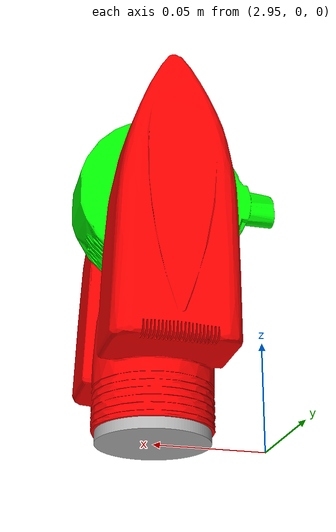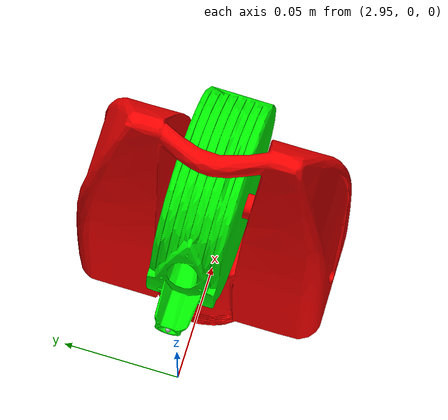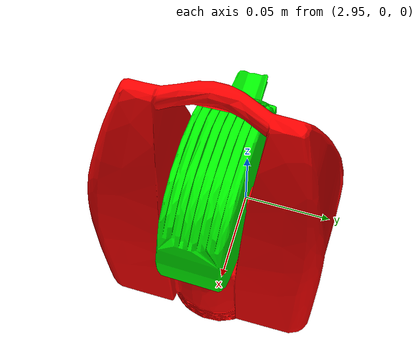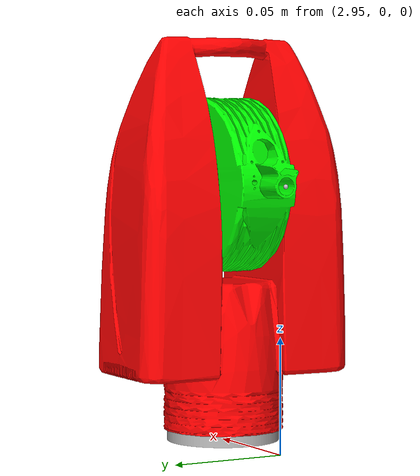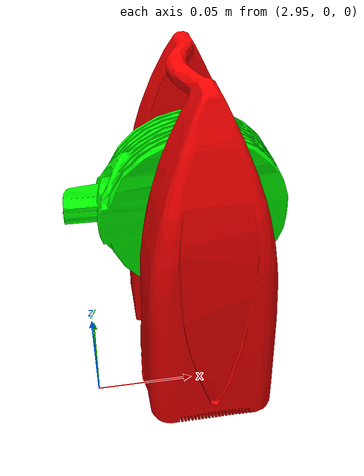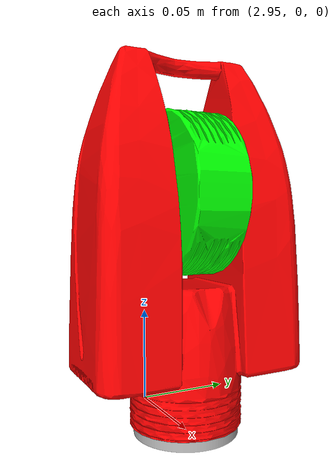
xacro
<?xml version="1.0" ?>
<robot name="lasertracker" xmlns:xacro="http://www.ros.org/wiki/xacro">

  <xacro:include filename="$(find laser_tracker_tools)/urdf/materials.xacro" />
  <xacro:include filename="$(find laser_tracker_tools)/urdf/lasertracker.gazebo" />

  <link name="world"/>

  <joint name="base" type="fixed">
      <origin xyz="3.0 0.0 0.0" rpy="0.0 0.0 -1.5708"/>
      <parent link="world"/>
      <child link="base_link"/>
      <axis xyz="0.0 0.0 0.0"/>
      <limit lower="0.0" upper="0.0" effort="0.0" velocity="0.0"/>
  </joint>

  <link name="base_link">
    <inertial>
      <origin xyz="-3.618764437576268e-18 -7.237528875152536e-18 0.0025" rpy="0 0 0"/>
      <mass value="0.0770671947833746"/>
      <inertia ixx="1.2e-05" iyy="1.2e-05" izz="2.4e-05" ixy="-0.0" iyz="-0.0" ixz="0.0"/>
    </inertial>
    <visual>
      <origin xyz="0 0 0" rpy="0 0 0"/>
      <geometry>
        <mesh filename="file://$(find laser_tracker_tools)/meshes/base_link.stl" scale="0.001 0.001 0.001"/>
      </geometry>
      <material name="silver"/>
    </visual>
    <collision>
      <origin xyz="0 0 0" rpy="0 0 0"/>
      <geometry>
        <mesh filename="file://$(find laser_tracker_tools)/meshes/base_link.stl" scale="0.001 0.001 0.001"/>
      </geometry>
    </collision>
  </link>

  <link name="Link_1">
    <inertial>
      <origin xyz="0.00018869328495569018 -0.00022483382979837345 0.071459595268866" rpy="0 0 0"/>
      <mass value="4.120583142610971"/>
      <inertia ixx="0.007397" iyy="0.010189" izz="0.004435" ixy="-0.0" iyz="8.8e-05" ixz="3e-06"/>
    </inertial>
    <visual>
      <origin xyz="-0.0 -0.0 -0.005" rpy="0 0 0"/>
      <geometry>
        <mesh filename="file://$(find laser_tracker_tools)/meshes/Link_1.stl" scale="0.001 0.001 0.001"/>
      </geometry>
      <material name="red"/>
    </visual>
    <collision>
      <origin xyz="-0.0 -0.0 -0.005" rpy="0 0 0"/>
      <geometry>
        <mesh filename="file://$(find laser_tracker_tools)/meshes/Link_1.stl" scale="0.001 0.001 0.001"/>
      </geometry>
    </collision>
  </link>

  <link name="Link_2">
    <inertial>
      <origin xyz="-0.00021113003510141322 0.0 0.002059592205613331" rpy="0 0 0"/>
      <mass value="0.9276291336344198"/>
      <inertia ixx="0.000701" iyy="0.000381" izz="0.000423" ixy="-5e-06" iyz="-2e-06" ixz="2e-06"/>
    </inertial>
    <visual>
      <origin xyz="-0.000757 0.0 -0.111321" rpy="0 0 0"/>
      <geometry>
        <mesh filename="file://$(find laser_tracker_tools)/meshes/Link_2.stl" scale="0.001 0.001 0.001"/>
      </geometry>
      <material name="green"/>
    </visual>
    <collision>
      <origin xyz="-0.000757 0.0 -0.111321" rpy="0 0 0"/>
      <geometry>
        <mesh filename="file://$(find laser_tracker_tools)/meshes/Link_2.stl" scale="0.001 0.001 0.001"/>
      </geometry>
    </collision>
  </link>

  <link name="optic_frame">
    <inertial>
      <origin xyz="0 0 0" rpy="0 0 0"/>
      <mass value="1e-6"/>
      <inertia ixx="1e-6" iyy="1e-6" izz="1e-6" ixy="0" ixz="0" iyz="0"/>
    </inertial>
    <visual>
      <origin xyz="0 0 0" rpy="0 0 0"/>
      <geometry><sphere radius="0.001"/></geometry>
    </visual>
    <collision>
      <origin xyz="0 0 0" rpy="0 0 0"/>
      <geometry><sphere radius="0.001"/></geometry>
    </collision>
  </link>

  <joint name="Joint_Yaw" type="continuous">
    <origin xyz="0.0 0.0 0.005" rpy="0 0 0"/>
    <parent link="base_link"/>
    <child link="Link_1"/>
    <axis xyz="0.0 0.0 1.0"/>
    <limit upper="4.014257" lower="-4.014257" effort="100" velocity="100"/>
  </joint>

  <joint name="Joint_Pitch" type="revolute">
    <origin xyz="0.0 0.0 0.106321" rpy="0 0 0"/>
    <parent link="Link_1"/>
    <child link="Link_2"/>
    <axis xyz="0.999868 -0.016134 0.001653"/>
    <limit upper="1.047198" lower="-4.014257" effort="100" velocity="100"/>
  </joint>

  <joint name="optic_fixed" type="fixed">
    <origin xyz="-0.001 -0.056 0.0025" rpy="0.0 0.0 0.0"/>
    <parent link="Link_2"/>
    <child link="optic_frame"/>
    <axis xyz="0.0 0.0 0.0"/>
  </joint>

  <ros2_control name="LaserTrackerSystem" type="system">
    <hardware>
      <plugin>gazebo_ros2_control/GazeboSystem</plugin>
    </hardware>

    <joint name="Joint_Yaw">
      <command_interface name="position"/>
      <state_interface name="position"/>
      <state_interface name="velocity"/>
    </joint>

    <joint name="Joint_Pitch">
      <command_interface name="position"/>
      <state_interface name="position"/>
      <state_interface name="velocity"/>
    </joint>
  </ros2_control>

  <gazebo>
    <plugin filename="libgazebo_ros2_control.so" name="gazebo_ros2_control">
      <robot_param_node>/laser_tracker/robot_state_publisher</robot_param_node>
      <ros>
        <namespace>laser_tracker</namespace>
        <node_name>gazebo_ros2_control_tracker</node_name>
        <remapping>/tf:=/laser_tracker/tf</remapping>
        <remapping>/tf_static:=/laser_tracker/tf_static</remapping>
      </ros>
      <parameters>$(find laser_tracker_tools)/config/controller_manager.yaml</parameters>
    </plugin>

  <plugin name="laser_tracker_sim" filename="liblaser_tracker_tools.so">
    <max_range>60.0</max_range>
    <h_fov>0.17453</h_fov>
    <v_fov>0.17453</v_fov>
    <sigma_range>5.0e-6</sigma_range>
    <sigma_angle>4.85e-6</sigma_angle>
    <lock_ang_thresh>0.005</lock_ang_thresh>
    <occlusion>true</occlusion>
    <search_speed>0.3</search_speed>
    <beam_len>1.0</beam_len>
    <update_rate>50.0</update_rate>

    <target_link>ee_smr</target_link>
    <pan_cmd_topic>/laser_tracker/pan_tilt_controller/commands</pan_cmd_topic>
    <tracker_frame>base_link</tracker_frame>
  </plugin>
  </gazebo>

</robot>

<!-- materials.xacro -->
<robot name="lasertracker" xmlns:xacro="http://www.ros.org/wiki/xacro" >

<material name="red">
  <color rgba="1.000 0.000 0.000 1.000"/>
</material>

<material name="green">
  <color rgba="0.000 1.000 0.000 1.000"/>
</material>

<material name="blue">
  <color rgba="0.000 0.000 1.000 1.000"/>
</material>

<material name="yellow">
  <color rgba="1.000 1.000 0.000 1.000"/>
</material>

<material name="orange">
  <color rgba="1.000 0.550 0.000 1.000"/>
</material>

<material name="purple">
  <color rgba="0.500 0.000 0.500 1.000"/>
</material>

<material name="silver">
  <color rgba="0.700 0.700 0.700 1.000"/>
</material>
</robot>

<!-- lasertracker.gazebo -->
<robot name="lasertracker" xmlns:xacro="http://www.ros.org/wiki/xacro" >

  <xacro:property name="color_red" value="Gazebo/Red" />
  <xacro:property name="color_green" value="Gazebo/Green" />
  <xacro:property name="color_blue" value="Gazebo/Blue" />
  <xacro:property name="color_yellow" value="Gazebo/Yellow" />
  <xacro:property name="color_purple" value="Gazebo/Purple" />
  <xacro:property name="color_orange" value="Gazebo/Orange" />
  <xacro:property name="color_silver" value="Gazebo/Silver" />

<gazebo reference="base_link">
  <material>${color_silver}</material>
  <mu1>0.2</mu1>
  <mu2>0.2</mu2>
  <self_collide>true</self_collide>
  <static>true</static>
</gazebo>

<gazebo reference="Link_1">
  <material>${color_green}</material>
  <mu1>0.2</mu1>
  <mu2>0.2</mu2>
  <self_collide>true</self_collide>
</gazebo>

<gazebo reference="Link_2">
  <material>${color_yellow}</material>
  <mu1>0.2</mu1>
  <mu2>0.2</mu2>
  <self_collide>true</self_collide>
</gazebo>

<gazebo reference="optic_frame">
  <material>${color_silver}</material>
  <mu1>0.2</mu1>
  <mu2>0.2</mu2>
  <self_collide>true</self_collide>
</gazebo>
</robot>
